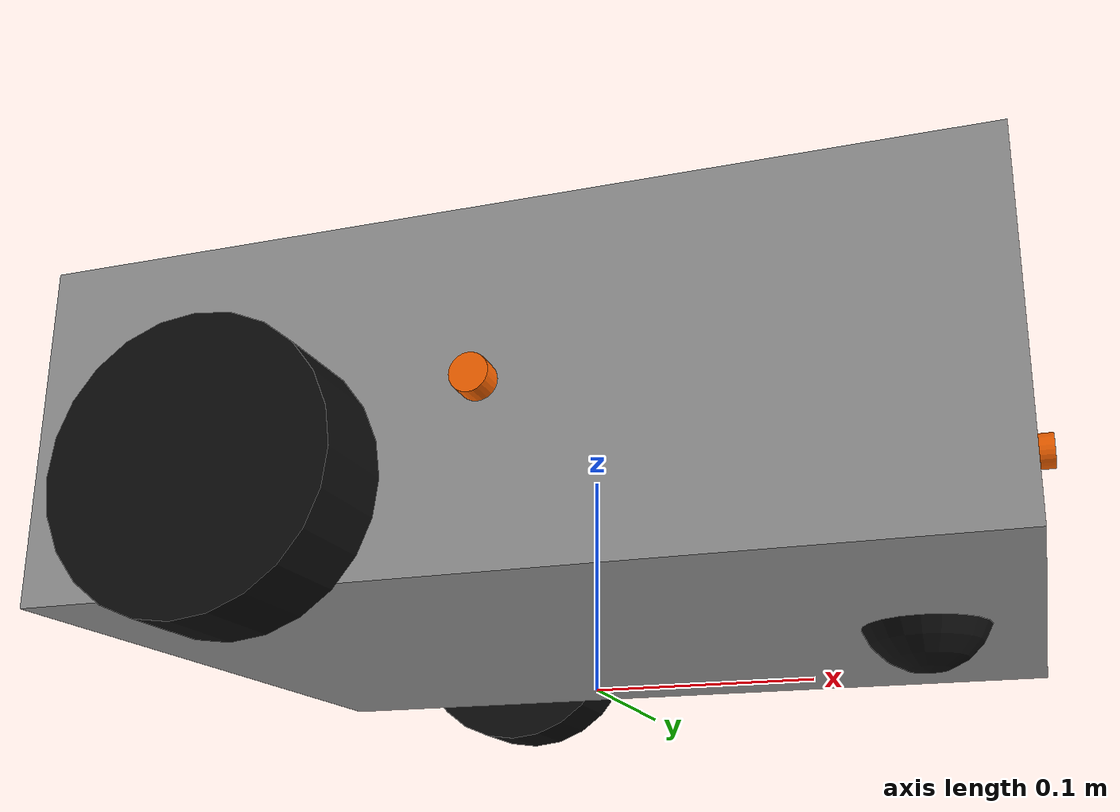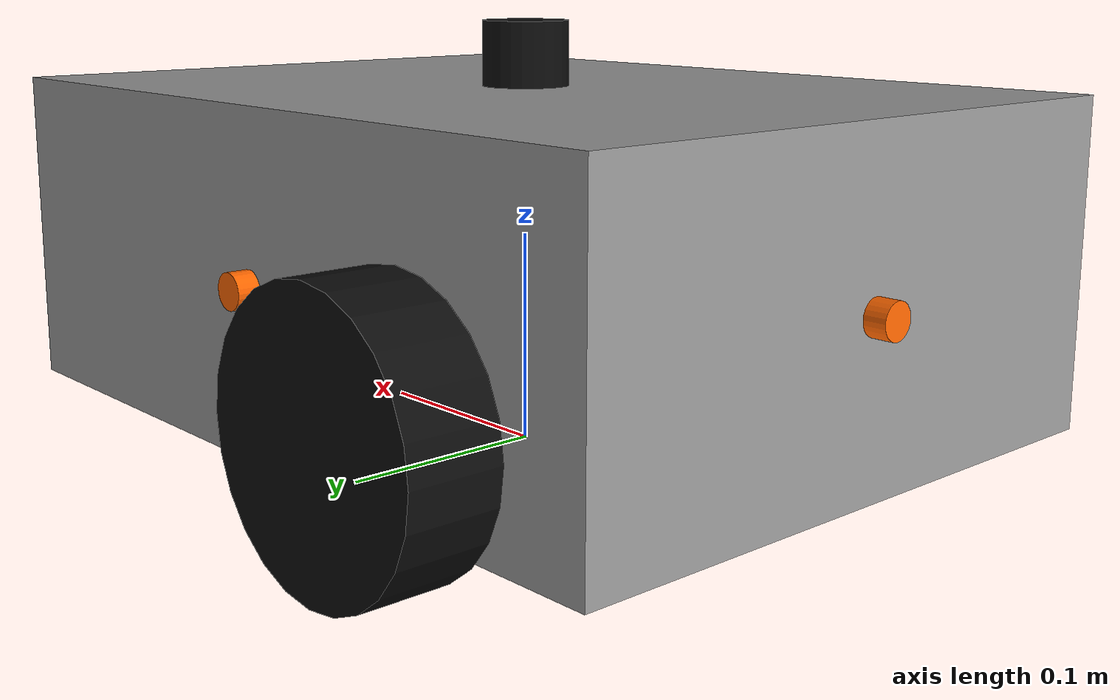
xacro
<?xml version="1.0"?>
<robot name="ultrasonic_box_bot" xmlns:xacro="http://www.ros.org/wiki/xacro">

  <!-- ================= PROPERTIES ================= -->
  <xacro:property name="box_x" value="0.4"/>   <!-- length -->
  <xacro:property name="box_y" value="0.3"/>   <!-- width -->
  <xacro:property name="box_z" value="0.15"/>  <!-- height -->
  <xacro:property name="box_mass" value="5.0"/>

  <xacro:property name="wheel_radius" value="0.06"/>
  <xacro:property name="wheel_width" value="0.04"/>
  <xacro:property name="wheel_separation" value="0.34"/>
  <xacro:property name="wheel_mass" value="0.3"/>

  <xacro:property name="caster_radius" value="0.03"/>
  <xacro:property name="caster_mass" value="0.1"/>

  <xacro:property name="us_len" value="0.01"/>
  <xacro:property name="us_radius" value="0.008"/>
  <xacro:property name="us_range_min" value="0.02"/>
  <xacro:property name="us_range_max" value="4.0"/>
  <xacro:property name="us_fov" value="0.5235987756"/>

  <material name="grey">
    <color rgba="0.6 0.6 0.6 1.0"/>
  </material>
  <material name="black">
    <color rgba="0.05 0.05 0.05 1.0"/>
  </material>
  <material name="orange">
    <color rgba="1.0 0.4 0.0 1.0"/>
  </material>

  <!-- ================= INERTIA MACROS ================= -->
  <xacro:macro name="box_inertia" params="mass x y z z_offset">
    <inertial>
      <origin xyz="0 0 ${z_offset}" rpy="0 0 0"/>
      <mass value="${mass}"/>
      <inertia
        ixx="${mass/12.0*(y*y+z*z)}" ixy="0.0" ixz="0.0"
        iyy="${mass/12.0*(x*x+z*z)}" iyz="0.0"
        izz="${mass/12.0*(x*x+y*y)}"/>
    </inertial>
  </xacro:macro>

  <xacro:macro name="cylinder_inertia" params="mass r h rpy:='0 0 0'">
    <inertial>
      <origin xyz="0 0 0" rpy="${rpy}"/>
      <mass value="${mass}"/>
      <inertia
        ixx="${mass/12.0*(3*r*r+h*h)}" ixy="0.0" ixz="0.0"
        iyy="${mass/12.0*(3*r*r+h*h)}" iyz="0.0"
        izz="${mass/2.0*r*r}"/>
    </inertial>
  </xacro:macro>

  <!-- ================= BASE LINK ================= -->
  <!-- base_footprint is on the ground plane (Z = 0) -->
  <link name="base_footprint"/>

  <!-- base_link origin is located at wheel axle height (Z = wheel_radius) -->
  <joint name="base_footprint_joint" type="fixed">
    <parent link="base_footprint"/>
    <child link="base_link"/>
    <origin xyz="0 0 ${wheel_radius}" rpy="0 0 0"/>
  </joint>

  <link name="base_link">
    <!-- Chassis box centered at Z = 0.035 gives 0.02m ground clearance -->
    <visual>
      <origin xyz="0 0 0.035" rpy="0 0 0"/>
      <geometry>
        <box size="${box_x} ${box_y} ${box_z}"/>
      </geometry>
      <material name="grey"/>
    </visual>
    <collision>
      <origin xyz="0 0 0.035" rpy="0 0 0"/>
      <geometry>
        <box size="${box_x} ${box_y} ${box_z}"/>
      </geometry>
    </collision>
    <!-- Low center of mass for high dynamic stability -->
    <xacro:box_inertia mass="${box_mass}" x="${box_x}" y="${box_y}" z="${box_z}" z_offset="0.01"/>
  </link>

  <gazebo reference="base_link">
    <material>Gazebo/Grey</material>
  </gazebo>

  <!-- ================= WHEELS ================= -->
  <xacro:macro name="wheel" params="prefix reflect_y">
    <link name="${prefix}_wheel_link">
      <visual>
        <origin xyz="0 0 0" rpy="1.5708 0 0"/>
        <geometry>
          <cylinder radius="${wheel_radius}" length="${wheel_width}"/>
        </geometry>
        <material name="black"/>
      </visual>
      <collision>
        <origin xyz="0 0 0" rpy="1.5708 0 0"/>
        <geometry>
          <cylinder radius="${wheel_radius}" length="${wheel_width}"/>
        </geometry>
      </collision>
      <xacro:cylinder_inertia mass="${wheel_mass}" r="${wheel_radius}" h="${wheel_width}" rpy="1.5708 0 0"/>
    </link>

    <joint name="${prefix}_wheel_joint" type="continuous">
      <parent link="base_link"/>
      <child link="${prefix}_wheel_link"/>
      <origin xyz="${-box_x/4.0} ${reflect_y * (wheel_separation / 2.0)} 0.0" rpy="0 0 0"/>
      <axis xyz="0 1 0"/>
    </joint>

    <gazebo reference="${prefix}_wheel_link">
      <material>Gazebo/Black</material>
      <mu1>1.0</mu1>
      <mu2>1.0</mu2>
      <kp>1000000.0</kp>
      <kd>1.0</kd>
    </gazebo>
  </xacro:macro>

  <xacro:wheel prefix="left" reflect_y="1"/>
  <xacro:wheel prefix="right" reflect_y="-1"/>

  <!-- ================= FRONT CASTER WHEEL ================= -->
  <!-- Caster center is at Z = -0.03 relative to base_link (Z = 0.03 in base_footprint).
       Radius is 0.03m, so ground contact is exactly Z = 0.00m matching the drive wheels. -->
  <link name="caster_wheel_link">
    <visual>
      <geometry>
        <sphere radius="${caster_radius}"/>
      </geometry>
      <material name="black"/>
    </visual>
    <collision>
      <geometry>
        <sphere radius="${caster_radius}"/>
      </geometry>
    </collision>
    <inertial>
      <mass value="${caster_mass}"/>
      <inertia
        ixx="${2.0/5.0 * caster_mass * caster_radius * caster_radius}" ixy="0" ixz="0"
        iyy="${2.0/5.0 * caster_mass * caster_radius * caster_radius}" iyz="0"
        izz="${2.0/5.0 * caster_mass * caster_radius * caster_radius}"/>
    </inertial>
  </link>

  <joint name="caster_wheel_joint" type="fixed">
    <parent link="base_link"/>
    <child link="caster_wheel_link"/>
    <origin xyz="${box_x/2.0 - caster_radius - 0.02} 0.0 ${-wheel_radius + caster_radius}" rpy="0 0 0"/>
  </joint>

  <gazebo reference="caster_wheel_link">
    <material>Gazebo/Black</material>
    <!-- Frictionless omni-directional contact to prevent anchor drag -->
    <mu1>0.001</mu1>
    <mu2>0.001</mu2>
    <kp>1000000.0</kp>
    <kd>1.0</kd>
  </gazebo>

  <!-- ================= ULTRASONIC SENSOR MACRO ================= -->
  <xacro:macro name="ultrasonic_sensor" params="name x y z yaw">
    <link name="${name}_link">
      <visual>
        <origin xyz="0 0 0" rpy="0 1.5708 0"/>
        <geometry>
          <cylinder radius="${us_radius}" length="${us_len}"/>
        </geometry>
        <material name="orange"/>
      </visual>
      <collision>
        <origin xyz="0 0 0" rpy="0 1.5708 0"/>
        <geometry>
          <cylinder radius="${us_radius}" length="${us_len}"/>
        </geometry>
      </collision>
      <inertial>
        <mass value="0.01"/>
        <inertia ixx="1e-6" ixy="0" ixz="0" iyy="1e-6" iyz="0" izz="1e-6"/>
      </inertial>
    </link>

    <joint name="${name}_joint" type="fixed">
      <parent link="base_link"/>
      <child link="${name}_link"/>
      <origin xyz="${x} ${y} ${z}" rpy="0 0 ${yaw}"/>
    </joint>

    <gazebo reference="${name}_link">
      <material>Gazebo/Orange</material>
      <sensor name="${name}" type="gpu_lidar">
        <pose>0 0 0 0 0 0</pose>
        <topic>${name}</topic>
        <gz_frame_id>${name}_link</gz_frame_id>
        <update_rate>10</update_rate>
        <always_on>true</always_on>
        <visualize>true</visualize>
        <lidar>
          <scan>
            <horizontal>
              <samples>5</samples>
              <resolution>1</resolution>
              <min_angle>${-us_fov/2.0}</min_angle>
              <max_angle>${us_fov/2.0}</max_angle>
            </horizontal>
            <vertical>
              <samples>1</samples>
              <resolution>1</resolution>
              <min_angle>0.0</min_angle>
              <max_angle>0.0</max_angle>
            </vertical>
          </scan>
          <range>
            <min>${us_range_min}</min>
            <max>${us_range_max}</max>
            <resolution>0.01</resolution>
          </range>
        </lidar>
      </sensor>
    </gazebo>
  </xacro:macro>

  <xacro:ultrasonic_sensor name="us_front" x="${box_x/2.0 + us_len/2.0}" y="0" z="0.035" yaw="0"/>
  <xacro:ultrasonic_sensor name="us_back"  x="${-(box_x/2.0 + us_len/2.0)}" y="0" z="0.035" yaw="3.14159"/>
  <xacro:ultrasonic_sensor name="us_left"  x="0" y="${box_y/2.0 + us_len/2.0}" z="0.035" yaw="1.5708"/>
  <xacro:ultrasonic_sensor name="us_right" x="0" y="${-(box_y/2.0 + us_len/2.0)}" z="0.035" yaw="-1.5708"/>

  <!-- ================= TOP-MOUNTED 2D LIDAR ================= -->
  <xacro:property name="lidar_radius" value="0.02"/>
  <xacro:property name="lidar_height" value="0.03"/>
  <xacro:property name="lidar_range_min" value="0.08"/>
  <xacro:property name="lidar_range_max" value="10.0"/>
  <xacro:property name="lidar_samples" value="361"/>

  <link name="lidar_link">
    <visual>
      <origin xyz="0 0 0" rpy="0 0 0"/>
      <geometry>
        <cylinder radius="${lidar_radius}" length="${lidar_height}"/>
      </geometry>
      <material name="black"/>
    </visual>
    <collision>
      <origin xyz="0 0 0" rpy="0 0 0"/>
      <geometry>
        <cylinder radius="${lidar_radius}" length="${lidar_height}"/>
      </geometry>
    </collision>
    <inertial>
      <mass value="0.05"/>
      <inertia ixx="1e-5" ixy="0" ixz="0" iyy="1e-5" iyz="0" izz="1e-5"/>
    </inertial>
  </link>

  <joint name="lidar_joint" type="fixed">
    <parent link="base_link"/>
    <child link="lidar_link"/>
    <origin xyz="0 0 ${0.035 + box_z/2.0 + lidar_height/2.0}" rpy="0 0 0"/>
  </joint>

  <gazebo reference="lidar_link">
    <material>Gazebo/Black</material>
    <sensor name="lidar" type="gpu_lidar">
      <pose>0 0 0 0 0 0</pose>
      <topic>scan</topic>
      <gz_frame_id>lidar_link</gz_frame_id>
      <update_rate>10</update_rate>
      <always_on>true</always_on>
      <visualize>true</visualize>
      <lidar>
        <scan>
          <horizontal>
            <samples>${lidar_samples}</samples>
            <resolution>1</resolution>
            <min_angle>-3.14159</min_angle>
            <max_angle>3.14159</max_angle>
          </horizontal>
          <vertical>
            <samples>1</samples>
            <resolution>1</resolution>
            <min_angle>0.0</min_angle>
            <max_angle>0.0</max_angle>
          </vertical>
        </scan>
        <range>
          <min>${lidar_range_min}</min>
          <max>${lidar_range_max}</max>
          <resolution>0.01</resolution>
        </range>
      </lidar>
    </sensor>
  </gazebo>

  <!-- ================= GAZEBO DIFF DRIVE PLUGIN ================= -->
  <gazebo>
    <plugin filename="gz-sim-diff-drive-system" name="gz::sim::systems::DiffDrive">
      <left_joint>left_wheel_joint</left_joint>
      <right_joint>right_wheel_joint</right_joint>
      <wheel_separation>${wheel_separation}</wheel_separation>
      <wheel_radius>${wheel_radius}</wheel_radius>
      <odom_publish_frequency>20</odom_publish_frequency>
      <topic>cmd_vel_safe</topic>
      <odom_topic>odom</odom_topic>
      <tf_topic>tf</tf_topic>
      <frame_id>odom</frame_id>
      <child_frame_id>base_footprint</child_frame_id>
      <max_linear_acceleration>1.0</max_linear_acceleration>
      <max_angular_acceleration>2.0</max_angular_acceleration>
      <min_linear_velocity>-0.25</min_linear_velocity>
      <max_linear_velocity>0.25</max_linear_velocity>
      <min_angular_velocity>-0.8</min_angular_velocity>
      <max_angular_velocity>0.8</max_angular_velocity>
    </plugin>
    <plugin filename="gz-sim-joint-state-publisher-system" name="gz::sim::systems::JointStatePublisher">
    </plugin>
  </gazebo>

</robot>
